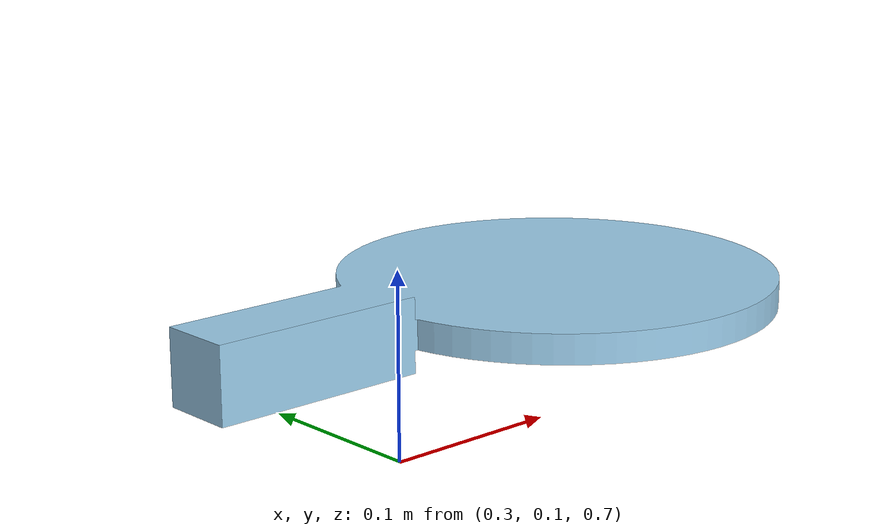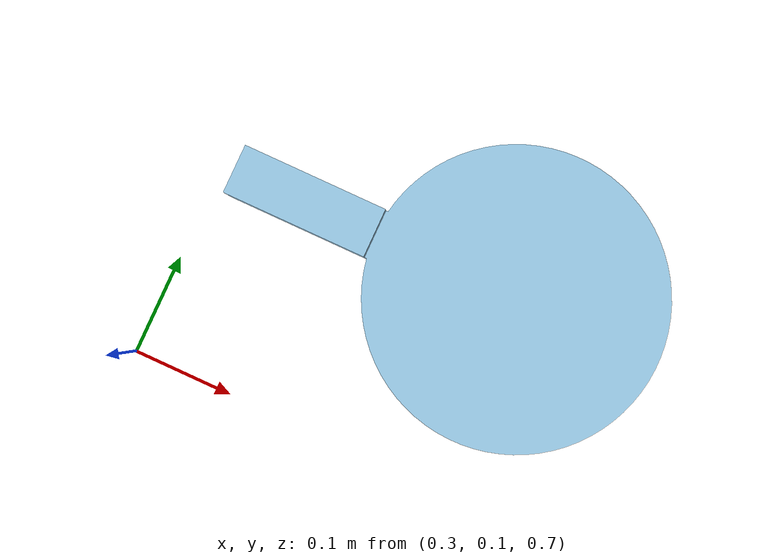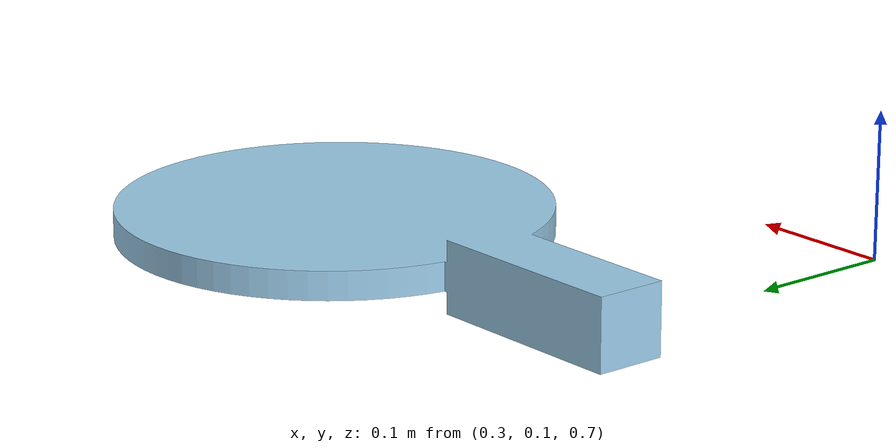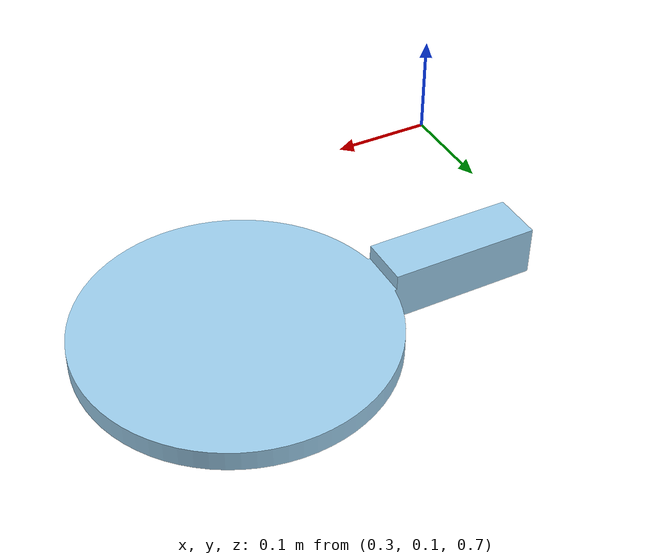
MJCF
<mujoco model="onshape">
  <compiler angle="radian"/>
  <asset>
    <mesh name="part_1" file="part_1.stl"/>
  </asset>
  <worldbody>
    <body name="racket" pos="0.6 0.2 0.7" euler="0 0 -1.57">
      <freejoint/>
      <site name='racket_handle' size='0.01' pos='-0.1 -0.25 0.0'/>
      <geom pos="-0.0993345 0.0124218 -0.0162676" type="mesh" rgba="0.615686 0.811765 0.929412 1" mesh="part_1" mass="1" conaffinity="1" contype="1"/>
    </body>
  </worldbody>
</mujoco>
